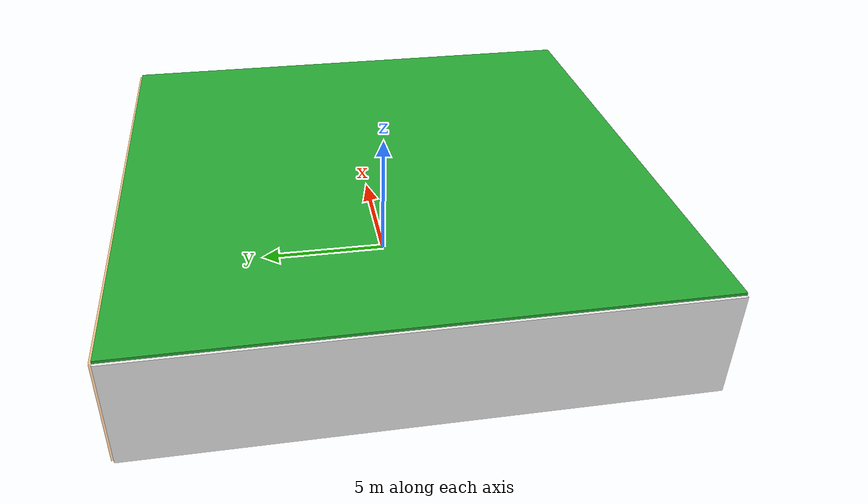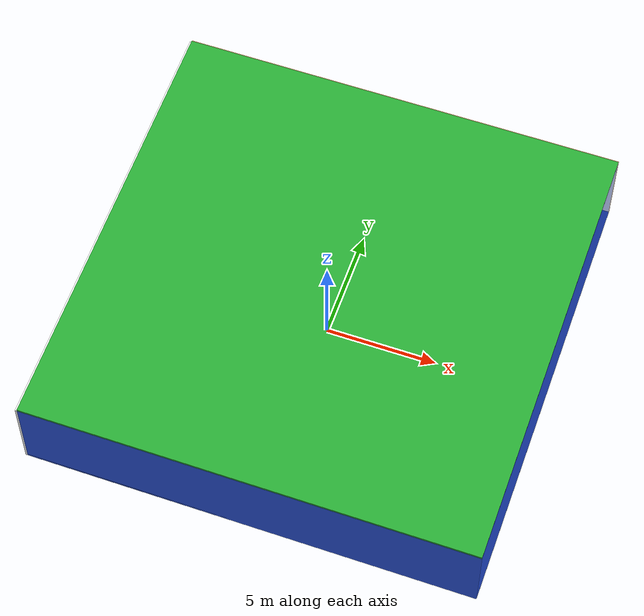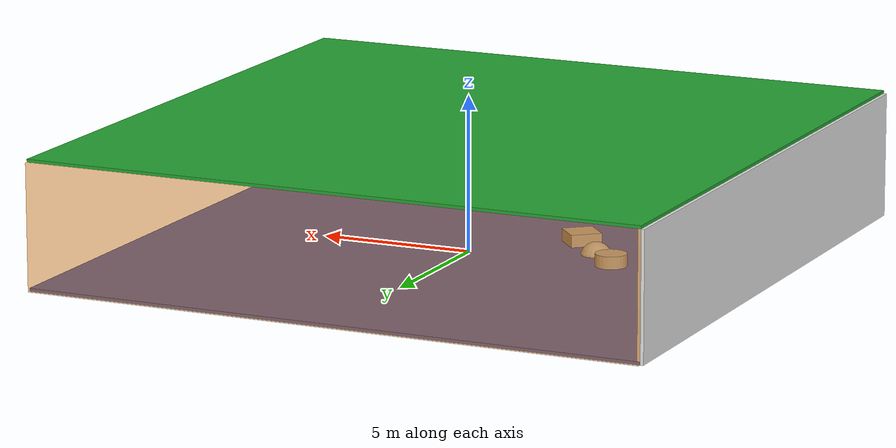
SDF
<sdf version="1.4">
 <world name="default">
  <physics type="ode">
   <max_step_size>0.001</max_step_size>
   <real_time_factor>1</real_time_factor>
   <real_time_update_rate>1000</real_time_update_rate>
   <gravity>0 0 -9.8</gravity>
  </physics>
  <scene><ambient>0.4 0.4 0.4 1</ambient><background>0.7 0.7 0.7 1</background><shadows>1</shadows></scene>
  <model name="Surrounding">
   <static>1</static>
   <link name="Ceiling">
    <collision name="Ceiling_Collision"><geometry><box><size>20 20 0.1</size></box></geometry></collision>
    <visual name="Ceiling_Visual">
     <geometry><box><size>20 20 0.1</size></box></geometry>
     <material>
      <script><uri>file://media/materials/scripts/gazebo.material</uri><name>Gazebo/GreenGlow</name></script>
     </material>
    </visual>
    <pose>0 0 4.05 0 0 0</pose>
   </link>
   <link name="Wall_South">
    <collision name="Wall_South_Collision">
     <geometry><box><size>20 0 4</size></box></geometry>
     <pose>0 0 2 0 -0 0</pose>
    </collision>
    <visual name="Wall_South_Visual">
     <pose>0 0 2 0 -0 0</pose>
     <geometry><box><size>20 0 4</size></box></geometry>
     <material>
      <script><uri>file://media/materials/scripts/gazebo.material</uri><name>Gazebo/BlueGlow</name></script>
     </material>
    </visual>
    <velocity_decay><linear>0</linear><angular>0</angular></velocity_decay>
    <pose>0 -10 0 0 -0 0</pose>
   </link>
   <link name="Wall_East">
    <collision name="Wall_21_Collision">
     <geometry><box><size>20 0 4</size></box></geometry>
     <pose>0 0 2 0 -0 0</pose>
    </collision>
    <visual name="Wall_21_Visual">
     <pose>0 0 2 0 -0 0</pose>
     <geometry><box><size>20 0 4</size></box></geometry>
     <material>
      <script><uri>file://media/materials/scripts/gazebo.material</uri><name>Gazebo/BlueTransparent</name></script>
     </material>
    </visual>
    <velocity_decay><linear>0</linear><angular>0</angular></velocity_decay>
    <pose>10 0 0 0 -0 1.5708</pose>
   </link>
   <link name="Wall_North">
    <collision name="Wall_22_Collision">
     <geometry><box><size>20 0.2 4</size></box></geometry>
     <pose>0 0 2 0 -0 0</pose>
    </collision>
    <visual name="Wall_22_Visual">
     <pose>0 0 2 0 -0 0</pose>
     <geometry><box><size>20 0.2 4</size></box></geometry>
     <material>
      <script>
       <uri>file://media/materials/scripts/gazebo.material</uri>
       <name>Gazebo/OrangeTransparent</name>
      </script>
     </material>
    </visual>
    <velocity_decay><linear>0</linear><angular>0</angular></velocity_decay>
    <pose>0 10 0 0 -0 0</pose>
   </link>
   <link name="Wall_West">
    <collision name="Wall_23_Collision">
     <geometry><box><size>20 0.2 4</size></box></geometry>
     <pose>0 0 2 0 -0 0</pose>
    </collision>
    <visual name="Wall_23_Visual">
     <pose>0 0 2 0 -0 0</pose>
     <geometry><box><size>20 0.2 4</size></box></geometry>
     <material>
      <script><uri>file://media/materials/scripts/gazebo.material</uri><name>Gazebo/WhiteGlow</name></script>
     </material>
    </visual>
    <velocity_decay><linear>0</linear><angular>0</angular></velocity_decay>
    <pose>-10 0 0 0 0 -1.5708</pose>
   </link>
   <link name="Ground_link">
    <collision name="collision">
     <pose>0 0 .05 0 -0 0</pose>
     <geometry><box><size>20 20 0.1</size></box></geometry>
    </collision>
    <visual name="visual">
     <pose>0 0 .05 0 -0 0</pose>
     <geometry><box><size>20 20 0.1</size></box></geometry>
     <material>
      <script><uri>file://media/materials/scripts/gazebo.material</uri><name>Gazebo/BlueLaser</name></script>
     </material>
    </visual>
   </link>
   <static>1</static>
  </model>
  <spherical_coordinates>
   <surface_model>EARTH_WGS84</surface_model>
   <latitude_deg>0</latitude_deg>
   <longitude_deg>0</longitude_deg>
   <elevation>0</elevation>
   <heading_deg>0</heading_deg>
  </spherical_coordinates>
  <light name="lightball_0" type="diffuse">
   <diffuse>0.8 0.8 0.8 1</diffuse>
   <specular>0.2 0.2 0.2 1</specular>
   <attenuation>
    <range>100</range>
    <constant>0.7</constant>
    <linear>0.01</linear>
    <quadratic>0.001</quadratic>
   </attenuation>
   <direction>-0.5 0.1 -0.9</direction>
   <pose>-8.61610866203 -5.4159780152 1.17988003699 0 0 0</pose>
  </light>
  <light name="lightball_1" type="diffuse">
   <diffuse>0.8 0.8 0.8 1</diffuse>
   <specular>0.2 0.2 0.2 1</specular>
   <attenuation>
    <range>100</range>
    <constant>0.7</constant>
    <linear>0.01</linear>
    <quadratic>0.001</quadratic>
   </attenuation>
   <direction>-0.5 0.1 -0.9</direction>
   <pose>9.57750250523 8.24780698547 0.714757959056 0 0 0</pose>
  </light>
  <light name="lightball_2" type="diffuse">
   <diffuse>0.8 0.8 0.8 1</diffuse>
   <specular>0.2 0.2 0.2 1</specular>
   <attenuation>
    <range>100</range>
    <constant>0.7</constant>
    <linear>0.01</linear>
    <quadratic>0.001</quadratic>
   </attenuation>
   <direction>-0.5 0.1 -0.9</direction>
   <pose>7.54534730715 -6.72803227772 3.50967102696 0 0 0</pose>
  </light>
  <light name="lightball_3" type="diffuse">
   <diffuse>0.8 0.8 0.8 1</diffuse>
   <specular>0.2 0.2 0.2 1</specular>
   <attenuation>
    <range>100</range>
    <constant>0.7</constant>
    <linear>0.01</linear>
    <quadratic>0.001</quadratic>
   </attenuation>
   <direction>-0.5 0.1 -0.9</direction>
   <pose>-4.76002457961 -3.95212078139 2.95504980574 0 0 0</pose>
  </light>
  <include>
   <uri>model://textured_shapes</uri>
   <pose>-3.8798461541 -1.02768896946 0 0 0 0.714726004742</pose>
  </include>
  <include><uri>model://table</uri><pose>6.37346882114 -8.38522543682 0 0 0 0.127429948989</pose></include>
  <include><uri>model://cabinet</uri><pose>7.75204168213 -5.55726923422 0 0 0 2.66316644524</pose></include>
 </world>
</sdf>

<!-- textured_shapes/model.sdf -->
<sdf version="1.6">
  <model name="textured_shapes">
    <pose>0 0 0.5 0 0 0</pose>
    <link name="box">
      <pose>0 -1.5 0 0 0 0</pose>
      <collision name="collision">
        <geometry>
          <box>
            <size>1 1 1</size>
          </box>
        </geometry>
      </collision>
      <visual name="visual">
        <geometry>
          <box>
            <size>1 1 1</size>
          </box>
        </geometry>
        <material>
          <script>
            <uri>model://../model_source/models/textured_shapes/materials/scripts</uri>
            <uri>model://../model_source/models/textured_shapes/materials/textures</uri>
            <name>TexturedShape/Squares</name>
          </script>
        </material>
      </visual>
    </link>
    <link name="sphere">
      <collision name="collision">
        <geometry>
          <sphere>
            <radius>0.5</radius>
          </sphere>
        </geometry>
      </collision>
      <visual name="visual">
        <geometry>
          <sphere>
            <radius>0.5</radius>
          </sphere>
        </geometry>
        <material>
          <script>
            <uri>model://../model_source/models/textured_shapes/materials/scripts</uri>
            <uri>model://../model_source/models/textured_shapes/materials/textures</uri>
            <name>TexturedShape/Squares</name>
          </script>
        </material>
      </visual>
    </link>
    <link name="cylinder">
      <pose>0 1.5 0 0 0 0</pose>
      <collision name="collision">
        <geometry>
          <cylinder>
            <radius>0.5</radius>
            <length>1</length>
          </cylinder>
        </geometry>
      </collision>
      <visual name="visual">
        <geometry>
          <cylinder>
            <radius>0.5</radius>
            <length>1</length>
          </cylinder>
        </geometry>
        <material>
          <script>
            <uri>model://../model_source/models/textured_shapes/materials/scripts</uri>
            <uri>model://../model_source/models/textured_shapes/materials/textures</uri>
            <name>TexturedShape/Squares</name>
          </script>
        </material>
      </visual>
    </link>
  </model>
</sdf>

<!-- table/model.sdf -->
<sdf version="1.5">
  <model name="table">
    <static>true</static>
    <link name="link">
      <collision name="surface">
        <pose>0 0 1.0 0 0 0</pose>
        <geometry>
          <box>
            <size>1.5 0.8 0.03</size>
          </box>
        </geometry>
        <surface>
          <friction>
            <ode>
              <mu>0.6</mu>
              <mu2>0.6</mu2>
            </ode>
          </friction>
        </surface>
      </collision>
      <visual name="visual1">
        <pose>0 0 1.0 0 0 0</pose>
        <geometry>
          <box>
            <size>1.5 0.8 0.03</size>
          </box>
        </geometry>
        <material>
          <script>
            <uri>model://media/materials/scripts/gazebo.material</uri>
            <name>Gazebo/Wood</name>
          </script>
        </material>
      </visual>
      <collision name="front_left_leg">
        <pose>0.68 0.38 0.5 0 0 0</pose>
        <geometry>
          <cylinder>
            <radius>0.02</radius>
            <length>1.0</length>
          </cylinder>
        </geometry>
      </collision>
      <visual name="front_left_leg">
        <pose>0.68 0.38 0.5 0 0 0</pose>
        <geometry>
          <cylinder>
            <radius>0.02</radius>
            <length>1.0</length>
          </cylinder>
        </geometry>
        <material>
          <script>
            <uri>model://media/materials/scripts/gazebo.material</uri>
            <name>Gazebo/Grey</name>
          </script>
        </material>
      </visual>
      <collision name="front_right_leg">
        <pose>0.68 -0.38 0.5 0 0 0</pose>
        <geometry>
          <cylinder>
            <radius>0.02</radius>
            <length>1.0</length>
          </cylinder>
        </geometry>
      </collision>
      <visual name="front_right_leg">
        <pose>0.68 -0.38 0.5 0 0 0</pose>
        <geometry>
          <cylinder>
            <radius>0.02</radius>
            <length>1.0</length>
          </cylinder>
        </geometry>
        <material>
          <script>
            <uri>model://media/materials/scripts/gazebo.material</uri>
            <name>Gazebo/Grey</name>
          </script>
        </material>
      </visual>
      <collision name="back_right_leg">
        <pose>-0.68 -0.38 0.5 0 0 0</pose>
        <geometry>
          <cylinder>
            <radius>0.02</radius>
            <length>1.0</length>
          </cylinder>
        </geometry>
      </collision>
      <visual name="back_right_leg">
        <pose>-0.68 -0.38 0.5 0 0 0</pose>
        <geometry>
          <cylinder>
            <radius>0.02</radius>
            <length>1.0</length>
          </cylinder>
        </geometry>
        <material>
          <script>
            <uri>model://media/materials/scripts/gazebo.material</uri>
            <name>Gazebo/Grey</name>
          </script>
        </material>
      </visual>
      <collision name="back_left_leg">
        <pose>-0.68 0.38 0.5 0 0 0</pose>
        <geometry>
          <cylinder>
            <radius>0.02</radius>
            <length>1.0</length>
          </cylinder>
        </geometry>
      </collision>
      <visual name="back_left_leg">
        <pose>-0.68 0.38 0.5 0 0 0</pose>
        <geometry>
          <cylinder>
            <radius>0.02</radius>
            <length>1.0</length>
          </cylinder>
        </geometry>
        <material>
          <script>
            <uri>model://media/materials/scripts/gazebo.material</uri>
            <name>Gazebo/Grey</name>
          </script>
        </material>
      </visual>
    </link>
  </model>
</sdf>

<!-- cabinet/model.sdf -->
<sdf version="1.5">
  <model name="cabinet">
    <static>true</static>
    <link name="cabinet_bottom_plate">
      <inertial>
        <pose>0 0 -1 0 0 0</pose>
        <inertia>
          <ixx>2.050000</ixx>
          <ixy>0</ixy>
          <ixz>0</ixz>
          <iyy>2.050000</iyy>
          <iyz>0</iyz>
          <izz>2.050000</izz>
        </inertia>
        <mass>25.000000</mass>
      </inertial>
      <collision name="cabinet_bottom_plate_geom">
        <pose>0 0 0.010000 0 0 0</pose>
        <geometry>
          <box>
            <size>0.450000 0.450000 0.020000</size>
          </box>
        </geometry>
      </collision>
      <visual name="cabinet_bottom_plate_geom_visual">
        <pose>0 0 0.010000 0 0 0</pose>
        <geometry>
          <box>
            <size>0.450000 0.450000 0.020000</size>
          </box>
        </geometry>
        <material>
          <script>
            <uri>model://media/materials/scripts/gazebo.material</uri>
            <name>Gazebo/Wood</name>
          </script>
        </material>
      </visual>
      <collision name="cabinet_bottom_plate_geom_cabinet_back_plate">
        <pose>0.235000 0 0.510000 0 0 0</pose>
        <geometry>
          <box>
            <size>0.020000 0.450000 1.020000</size>
          </box>
        </geometry>
      </collision>
      <visual name="cabinet_bottom_plate_geom_cabinet_back_plate_visual">
        <pose>0.235000 0 0.510000 0 0 0</pose>
        <geometry>
          <box>
            <size>0.020000 0.450000 1.020000</size>
          </box>
        </geometry>
        <material>
          <script>
            <uri>model://media/materials/scripts/gazebo.material</uri>
            <name>Gazebo/Wood</name>
          </script>
        </material>
      </visual>
      <collision name="cabinet_bottom_plate_geom_cabinet_left_plate">
        <pose>0 0.235000 0.510000 0 0 0</pose>
        <geometry>
          <box>
            <size>0.450000 0.020000 1.020000</size>
          </box>
        </geometry>
      </collision>
      <visual name="cabinet_bottom_plate_geom_cabinet_left_plate_visual">
        <pose>0 0.235000 0.510000 0 0 0</pose>
        <geometry>
          <box>
            <size>0.450000 0.020000 1.020000</size>
          </box>
        </geometry>
        <material>
          <script>
            <uri>model://media/materials/scripts/gazebo.material</uri>
            <name>Gazebo/Wood</name>
          </script>
        </material>
      </visual>
      <collision name="cabinet_bottom_plate_geom_cabinet_middle_plate">
        <pose>0 0 0.510000 0 0 0</pose>
        <geometry>
          <box>
            <size>0.450000 0.450000 0.020000</size>
          </box>
        </geometry>
      </collision>
      <visual name="cabinet_bottom_plate_geom_cabinet_middle_plate_visual">
        <pose>0 0 0.510000 0 0 0</pose>
        <geometry>
          <box>
            <size>0.450000 0.450000 0.020000</size>
          </box>
        </geometry>
        <material>
          <script>
            <uri>model://media/materials/scripts/gazebo.material</uri>
            <name>Gazebo/Wood</name>
          </script>
        </material>
      </visual>
      <collision name="cabinet_bottom_plate_geom_cabinet_right_plate">
        <pose>0 -0.235000 0.510000 0 0 0</pose>
        <geometry>
          <box>
            <size>0.450000 0.020000 1.020000</size>
          </box>
        </geometry>
      </collision>
      <visual name="cabinet_bottom_plate_geom_cabinet_right_plate_visual">
        <pose>0 -0.235000 0.510000 0 0 0</pose>
        <geometry>
          <box>
            <size>0.450000 0.020000 1.020000</size>
          </box>
        </geometry>
        <material>
          <script>
            <uri>model://media/materials/scripts/gazebo.material</uri>
            <name>Gazebo/Wood</name>
          </script>
        </material>
      </visual>
      <collision name="cabinet_bottom_plate_geom_cabinet_top_plate">
        <pose>0 0 1.010000 0 0 0</pose>
        <geometry>
          <box>
            <size>0.450000 0.450000 0.020000</size>
          </box>
        </geometry>
      </collision>
      <visual name="cabinet_bottom_plate_geom_cabinet_top_plate_visual">
        <pose>0 0 1.010000 0 0 0</pose>
        <geometry>
          <box>
            <size>0.450000 0.450000 0.020000</size>
          </box>
        </geometry>
        <material>
          <script>
            <uri>model://media/materials/scripts/gazebo.material</uri>
            <name>Gazebo/Wood</name>
          </script>
        </material>
      </visual>
    </link>
  </model>
</sdf>
